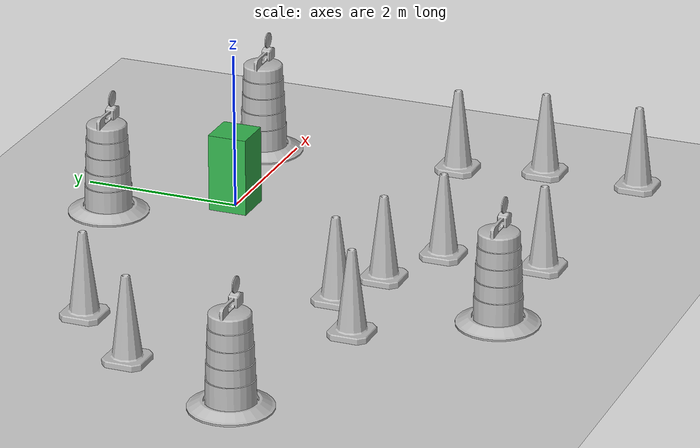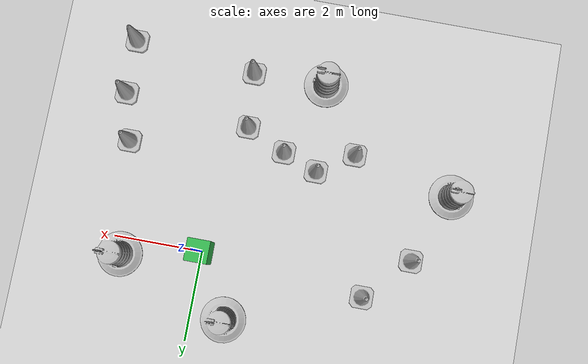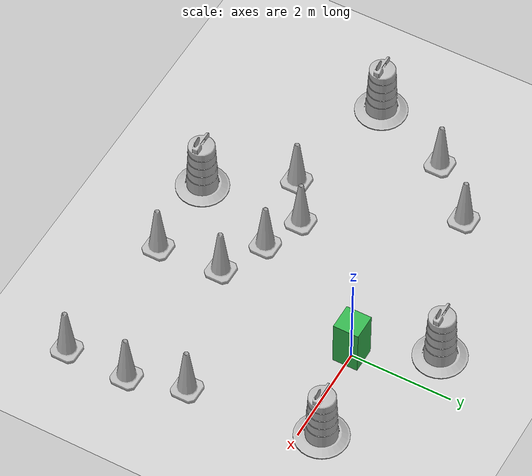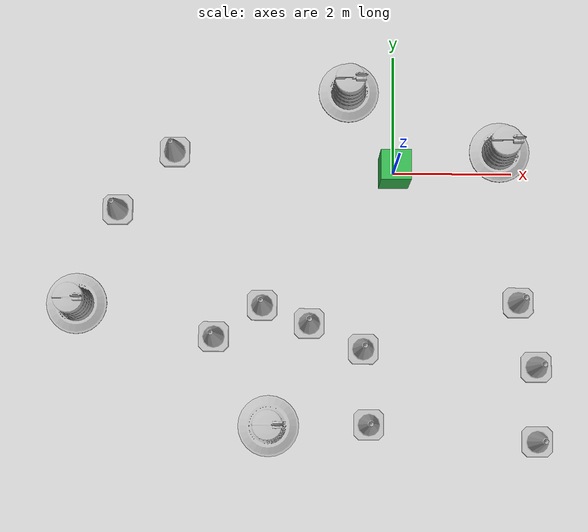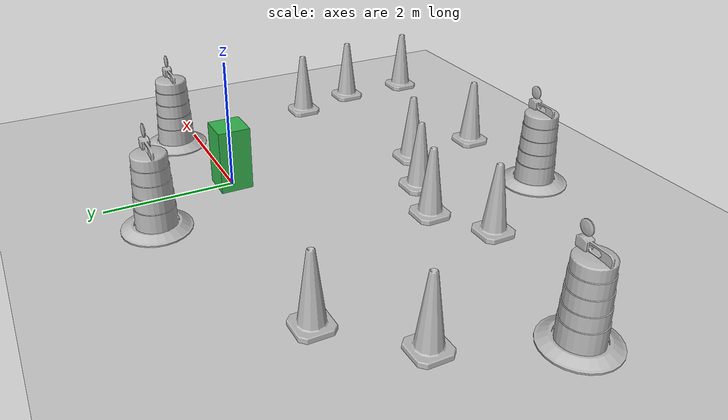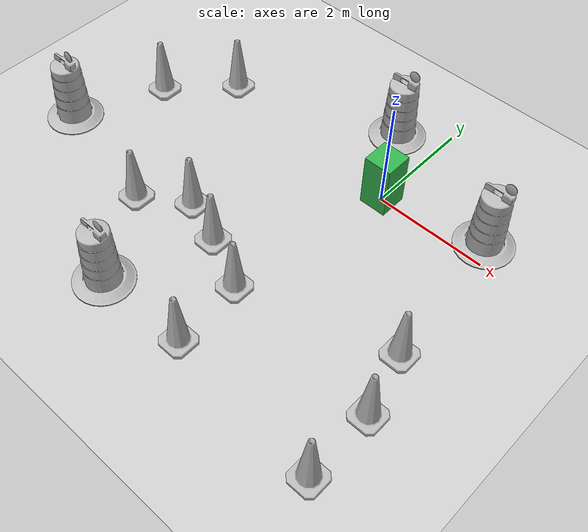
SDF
<sdf version="1.7">
 <world name="default">
  <light name="sun" type="directional">
   <pose>0 0 10 0 -0 0</pose>
   <diffuse>0.8 0.8 0.8 1</diffuse>
   <specular>0.2 0.2 0.2 1</specular>
   <attenuation>
    <range>1000</range>
    <constant>0.9</constant>
    <linear>0.01</linear>
    <quadratic>0.001</quadratic>
   </attenuation>
   <direction>-0.5 0.1 -0.9</direction>
   <spot><inner_angle>0</inner_angle><outer_angle>0</outer_angle><falloff>0</falloff></spot>
  </light>
  <model name="ground_plane">
   <static>1</static>
   <link name="link">
    <collision name="collision">
     <geometry><plane><normal>0 0 1</normal><size>100 100</size></plane></geometry>
     <surface>
      <contact><collide_bitmask>65535</collide_bitmask></contact>
      <friction><ode><mu>100</mu><mu2>50</mu2></ode></friction>
     </surface>
    </collision>
    <visual name="visual">
     <cast_shadows>0</cast_shadows>
     <geometry><plane><normal>0 0 1</normal><size>100 100</size></plane></geometry>
     <material>
      <script><uri>file://media/materials/scripts/gazebo.material</uri><name>Gazebo/Grey</name></script>
     </material>
    </visual>
   </link>
  </model>
  <gravity>0 0 -9.8</gravity>
  <magnetic_field>6e-06 2.3e-05 -4.2e-05</magnetic_field>
  <atmosphere type="adiabatic"/>
  <physics type="ode">
   <max_step_size>0.001</max_step_size>
   <real_time_factor>1</real_time_factor>
   <real_time_update_rate>1000</real_time_update_rate>
  </physics>
  <scene><ambient>0.4 0.4 0.4 1</ambient><background>0.7 0.7 0.7 1</background><shadows>1</shadows></scene>
  <spherical_coordinates>
   <surface_model>EARTH_WGS84</surface_model>
   <latitude_deg>0</latitude_deg>
   <longitude_deg>0</longitude_deg>
   <elevation>0</elevation>
   <heading_deg>0</heading_deg>
  </spherical_coordinates>
  <model name="random_mover">
   <pose>0 0 0.5 0 0 0</pose>
   <link name="link">
    <collision name="collision"><geometry><box><size>0.5 0.5 1.0</size></box></geometry></collision>
    <visual name="visual">
     <geometry><box><size>0.5 0.5 1.0</size></box></geometry>
     <material><ambient>0.2 0.7 0.3 1</ambient><diffuse>0.2 0.7 0.3 1</diffuse></material>
    </visual>
   </link>
   <plugin name="random_vel" filename="libRandomVelocityPlugin.so">
    <link>link</link>
    <initial_velocity>0 0 0</initial_velocity>
    <velocity_factor>1.0</velocity_factor>
    <update_period>2</update_period>
    <min_z>0</min_z>
    <max_z>0</max_z>
   </plugin>
  </model>
  <model name="Construction Barrel">
   <link name="link">
    <inertial>
     <pose>0 0 0.4 0 -0 0</pose>
     <mass>500</mass>
     <inertia><ixx>51.2096</ixx><iyy>51.2096</iyy><izz>25</izz><ixy>0</ixy><ixz>0</ixz><iyz>0</iyz></inertia>
    </inertial>
    <collision name="collision">
     <geometry><mesh><uri>model://construction_barrel/meshes/construction_barrel.dae</uri></mesh></geometry>
    </collision>
    <visual name="visual">
     <geometry><mesh><uri>model://construction_barrel/meshes/construction_barrel.dae</uri></mesh></geometry>
    </visual>
   </link>
   <pose>-0.756319 1.39223 0 0 0 -2.4e-05</pose>
  </model>
  <model name="Construction Barrel_0">
   <link name="link">
    <inertial>
     <pose>0 0 0.4 0 -0 0</pose>
     <mass>500</mass>
     <inertia><ixx>51.2096</ixx><iyy>51.2096</iyy><izz>25</izz><ixy>0</ixy><ixz>0</ixz><iyz>0</iyz></inertia>
    </inertial>
    <collision name="collision">
     <geometry><mesh><uri>model://construction_barrel/meshes/construction_barrel.dae</uri></mesh></geometry>
    </collision>
    <visual name="visual">
     <geometry><mesh><uri>model://construction_barrel/meshes/construction_barrel.dae</uri></mesh></geometry>
    </visual>
   </link>
   <pose>1.80014 0.377148 0 0 0 -2.2e-05</pose>
  </model>
  <model name="Construction Cone">
   <link name="link">
    <collision name="collision">
     <geometry>
      <mesh><scale>10 10 10</scale><uri>model://construction_cone/meshes/construction_cone.dae</uri></mesh>
     </geometry>
    </collision>
    <visual name="visual">
     <geometry>
      <mesh><scale>10 10 10</scale><uri>model://construction_cone/meshes/construction_cone.dae</uri></mesh>
     </geometry>
    </visual>
    <inertial>
     <inertia><ixx>1</ixx><ixy>0</ixy><ixz>0</ixz><iyy>1</iyy><iyz>0</iyz><izz>1</izz></inertia>
     <mass>1</mass>
    </inertial>
   </link>
   <pose>-2.19745 -2.25046 -0 0 -0 0</pose>
  </model>
  <model name="Construction Cone_0">
   <link name="link">
    <collision name="collision">
     <geometry>
      <mesh><scale>10 10 10</scale><uri>model://construction_cone/meshes/construction_cone.dae</uri></mesh>
     </geometry>
    </collision>
    <visual name="visual">
     <geometry>
      <mesh><scale>10 10 10</scale><uri>model://construction_cone/meshes/construction_cone.dae</uri></mesh>
     </geometry>
    </visual>
    <inertial>
     <inertia><ixx>1</ixx><ixy>0</ixy><ixz>0</ixz><iyy>1</iyy><iyz>0</iyz><izz>1</izz></inertia>
     <mass>1</mass>
    </inertial>
   </link>
   <pose>-1.40494 -2.55135 -0 0 -0 0</pose>
  </model>
  <model name="Construction Cone_1">
   <link name="link">
    <collision name="collision">
     <geometry>
      <mesh><scale>10 10 10</scale><uri>model://construction_cone/meshes/construction_cone.dae</uri></mesh>
     </geometry>
    </collision>
    <visual name="visual">
     <geometry>
      <mesh><scale>10 10 10</scale><uri>model://construction_cone/meshes/construction_cone.dae</uri></mesh>
     </geometry>
    </visual>
    <inertial>
     <inertia><ixx>1</ixx><ixy>0</ixy><ixz>0</ixz><iyy>1</iyy><iyz>0</iyz><izz>1</izz></inertia>
     <mass>1</mass>
    </inertial>
   </link>
   <pose>-0.501986 -2.9745 -0 0 -0 0</pose>
  </model>
  <model name="Construction Cone_2">
   <link name="link">
    <collision name="collision">
     <geometry>
      <mesh><scale>10 10 10</scale><uri>model://construction_cone/meshes/construction_cone.dae</uri></mesh>
     </geometry>
    </collision>
    <visual name="visual">
     <geometry>
      <mesh><scale>10 10 10</scale><uri>model://construction_cone/meshes/construction_cone.dae</uri></mesh>
     </geometry>
    </visual>
    <inertial>
     <inertia><ixx>1</ixx><ixy>0</ixy><ixz>0</ixz><iyy>1</iyy><iyz>0</iyz><izz>1</izz></inertia>
     <mass>1</mass>
    </inertial>
   </link>
   <pose>2.09724 -2.18232 -0 1e-06 -0 0</pose>
  </model>
  <model name="Construction Cone_3">
   <link name="link">
    <collision name="collision">
     <geometry>
      <mesh><scale>10 10 10</scale><uri>model://construction_cone/meshes/construction_cone.dae</uri></mesh>
     </geometry>
    </collision>
    <visual name="visual">
     <geometry>
      <mesh><scale>10 10 10</scale><uri>model://construction_cone/meshes/construction_cone.dae</uri></mesh>
     </geometry>
    </visual>
    <inertial>
     <inertia><ixx>1</ixx><ixy>0</ixy><ixz>0</ixz><iyy>1</iyy><iyz>0</iyz><izz>1</izz></inertia>
     <mass>1</mass>
    </inertial>
   </link>
   <pose>-3.69879 0.345038 -1e-05 0 -0 0</pose>
  </model>
  <model name="Construction Cone_4">
   <link name="link">
    <collision name="collision">
     <geometry>
      <mesh><scale>10 10 10</scale><uri>model://construction_cone/meshes/construction_cone.dae</uri></mesh>
     </geometry>
    </collision>
    <visual name="visual">
     <geometry>
      <mesh><scale>10 10 10</scale><uri>model://construction_cone/meshes/construction_cone.dae</uri></mesh>
     </geometry>
    </visual>
    <inertial>
     <inertia><ixx>1</ixx><ixy>0</ixy><ixz>0</ixz><iyy>1</iyy><iyz>0</iyz><izz>1</izz></inertia>
     <mass>1</mass>
    </inertial>
   </link>
   <pose>-0.406438 -4.23374 -0 0 -1e-06 0</pose>
  </model>
  <model name="Construction Cone_5">
   <link name="link">
    <collision name="collision">
     <geometry>
      <mesh><scale>10 10 10</scale><uri>model://construction_cone/meshes/construction_cone.dae</uri></mesh>
     </geometry>
    </collision>
    <visual name="visual">
     <geometry>
      <mesh><scale>10 10 10</scale><uri>model://construction_cone/meshes/construction_cone.dae</uri></mesh>
     </geometry>
    </visual>
    <inertial>
     <inertia><ixx>1</ixx><ixy>0</ixy><ixz>0</ixz><iyy>1</iyy><iyz>0</iyz><izz>1</izz></inertia>
     <mass>1</mass>
    </inertial>
   </link>
   <pose>2.38815 -3.2576 -0 0 -0 0</pose>
  </model>
  <model name="Construction Cone_6">
   <link name="link">
    <collision name="collision">
     <geometry>
      <mesh><scale>10 10 10</scale><uri>model://construction_cone/meshes/construction_cone.dae</uri></mesh>
     </geometry>
    </collision>
    <visual name="visual">
     <geometry>
      <mesh><scale>10 10 10</scale><uri>model://construction_cone/meshes/construction_cone.dae</uri></mesh>
     </geometry>
    </visual>
    <inertial>
     <inertia><ixx>1</ixx><ixy>0</ixy><ixz>0</ixz><iyy>1</iyy><iyz>0</iyz><izz>1</izz></inertia>
     <mass>1</mass>
    </inertial>
   </link>
   <pose>2.39316 -4.49605 -0 0 -1e-06 0</pose>
  </model>
  <model name="Construction Cone_7">
   <link name="link">
    <collision name="collision">
     <geometry>
      <mesh><scale>10 10 10</scale><uri>model://construction_cone/meshes/construction_cone.dae</uri></mesh>
     </geometry>
    </collision>
    <visual name="visual">
     <geometry>
      <mesh><scale>10 10 10</scale><uri>model://construction_cone/meshes/construction_cone.dae</uri></mesh>
     </geometry>
    </visual>
    <inertial>
     <inertia><ixx>1</ixx><ixy>0</ixy><ixz>0</ixz><iyy>1</iyy><iyz>0</iyz><izz>1</izz></inertia>
     <mass>1</mass>
    </inertial>
   </link>
   <pose>-3.00495 -2.78053 -0 0 -1e-06 0</pose>
  </model>
  <model name="Construction Cone_8">
   <link name="link">
    <collision name="collision">
     <geometry>
      <mesh><scale>10 10 10</scale><uri>model://construction_cone/meshes/construction_cone.dae</uri></mesh>
     </geometry>
    </collision>
    <visual name="visual">
     <geometry>
      <mesh><scale>10 10 10</scale><uri>model://construction_cone/meshes/construction_cone.dae</uri></mesh>
     </geometry>
    </visual>
    <inertial>
     <inertia><ixx>1</ixx><ixy>0</ixy><ixz>0</ixz><iyy>1</iyy><iyz>0</iyz><izz>1</izz></inertia>
     <mass>1</mass>
    </inertial>
   </link>
   <pose>-4.64786 -0.646522 -0 0 -1e-06 0</pose>
  </model>
  <model name="Construction Barrel_1">
   <link name="link">
    <inertial>
     <pose>0 0 0.4 0 -0 0</pose>
     <mass>500</mass>
     <inertia><ixx>51.2096</ixx><iyy>51.2096</iyy><izz>25</izz><ixy>0</ixy><ixz>0</ixz><iyz>0</iyz></inertia>
    </inertial>
    <collision name="collision">
     <geometry><mesh><uri>model://construction_barrel/meshes/construction_barrel.dae</uri></mesh></geometry>
    </collision>
    <visual name="visual">
     <geometry><mesh><uri>model://construction_barrel/meshes/construction_barrel.dae</uri></mesh></geometry>
    </visual>
   </link>
   <pose>-5.31082 -2.23709 -0 0 -0 -7e-06</pose>
  </model>
  <model name="Construction Barrel_2">
   <link name="link">
    <inertial>
     <pose>0 0 0.4 0 -0 0</pose>
     <mass>500</mass>
     <inertia><ixx>51.2096</ixx><iyy>51.2096</iyy><izz>25</izz><ixy>0</ixy><ixz>0</ixz><iyz>0</iyz></inertia>
    </inertial>
    <collision name="collision">
     <geometry><mesh><uri>model://construction_barrel/meshes/construction_barrel.dae</uri></mesh></geometry>
    </collision>
    <visual name="visual">
     <geometry><mesh><uri>model://construction_barrel/meshes/construction_barrel.dae</uri></mesh></geometry>
    </visual>
   </link>
   <pose>-2.07693 -4.26199 -0 0 0 -4e-06</pose>
  </model>
 </world>
</sdf>
